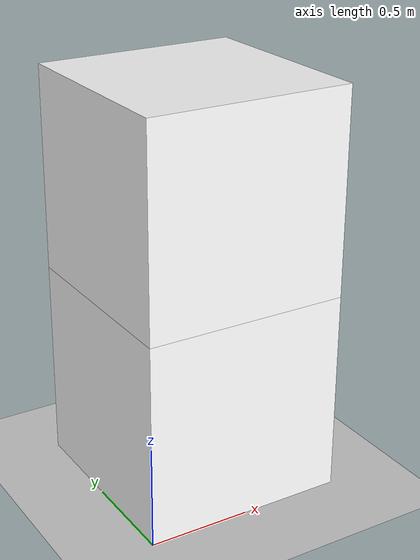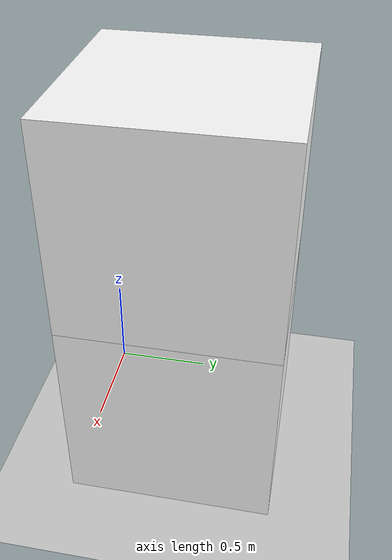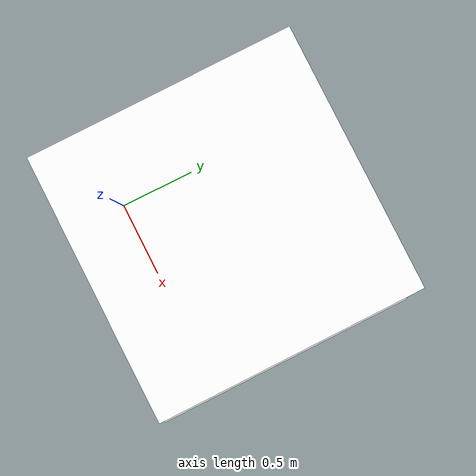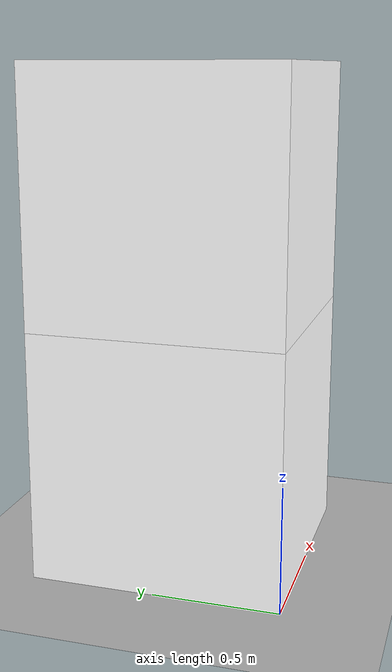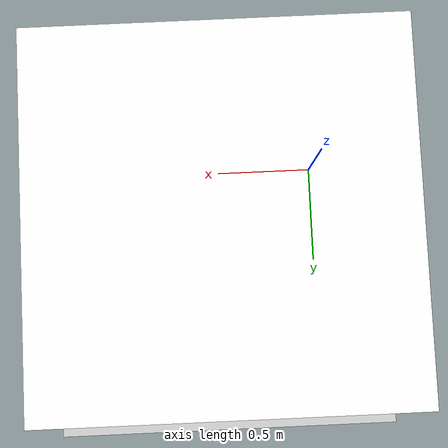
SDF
<?xml version="1.0" ?>
<sdf version="1.5">
  <world name="default">

		<!-- Camera pose -->
    <gui>
			<camera name="gzclient_camera">
				<pose>0.78 -6.20 3.74 0 0 1.57</pose>
			</camera>
    </gui>

    <!-- A global light source -->
    <include>
      <uri>model://sun</uri>
	    <pose>0 0 0 0 0 0</pose>
    </include>

    <!-- A ground plane -->
    <include>
      <uri>model://ground_plane</uri>
      <pose>0 0 0 0 0 0</pose>
    </include>

		<!-- A straight tetromino -->
		<include>
			<uri>model://straight_tetromino</uri>
			<pose>0.5 0.5 0.5 0 0 0</pose>
		</include>

		<!-- keep barebones scene -->
    <scene>
      <shadows>1</shadows>
			<grid>true</grid>
			<origin_visual>true</origin_visual>
    </scene>

  </world>
</sdf>

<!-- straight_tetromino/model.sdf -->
<sdf version="1.5">
  <model name="straight_tetromino">
		<static>true</static>

    <link name="link0">
      <inertial>
        <pose>0 0 0 0 0 0</pose>
        <mass>1.0</mass>
        <inertia>
          <ixx>0.083333</ixx>
					<ixy>0</ixy>
					<ixz>0</ixz>
					<iyy>0.083333</iyy>
					<iyz>0</iyz>
					<izz>0.083333</izz>
        </inertia>
      </inertial>

      <collision name="collision">
        <pose>0 0 0 0 0 0</pose>
        <geometry>
					<box>
						<size>1.0 1.0 1.0</size>
					</box>
        </geometry>
      </collision>

      <visual name="visual">
        <pose>0 0 0 0 0 0</pose>
        <geometry>
					<box>
						<size>1.0 1.0 1.0</size>
					</box>
        </geometry>
				<material>
					<!-- Set to green -->
          <ambient>0 1 0 1</ambient>
					<diffuse>1 1 1 1</diffuse>
					<specular>0 0 0 1</specular>
					<emissive>0 0.1 0 1</emissive>
        </material>
      </visual>
    </link>

		<link name="link1">
			<pose>0 0 1 0 0 0</pose>
			<inertial>
				<pose>0 0 0 0 0 0</pose>
				<mass>1.0</mass>
				<inertia>
					<ixx>0.083333</ixx>
					<ixy>0</ixy>
					<ixz>0</ixz>
					<iyy>0.083333</iyy>
					<iyz>0</iyz>
					<izz>0.083333</izz>
				</inertia>
			</inertial>

			<collision name="collision">
				<pose>0 0 0 0 0 0</pose>
				<geometry>
					<box>
						<size>1.0 1.0 1.0</size>
					</box>
				</geometry>
			</collision>

			<visual name="visual">
				<pose>0 0 0 0 0 0</pose>
				<geometry>
					<box>
						<size>1.0 1.0 1.0</size>
					</box>
				</geometry>
				<material>
					<!-- Set to green -->
					<ambient>0 1 0 1</ambient>
					<diffuse>1 1 1 1</diffuse>
					<specular>0 0 0 1</specular>
					<emissive>0 0.1 0 1</emissive>
				</material>
			</visual>
		</link>

		<joint name="joint0" type="fixed">
			<parent>link0</parent>
			<child>link1</child>
		</joint>

  </model>
</sdf>
